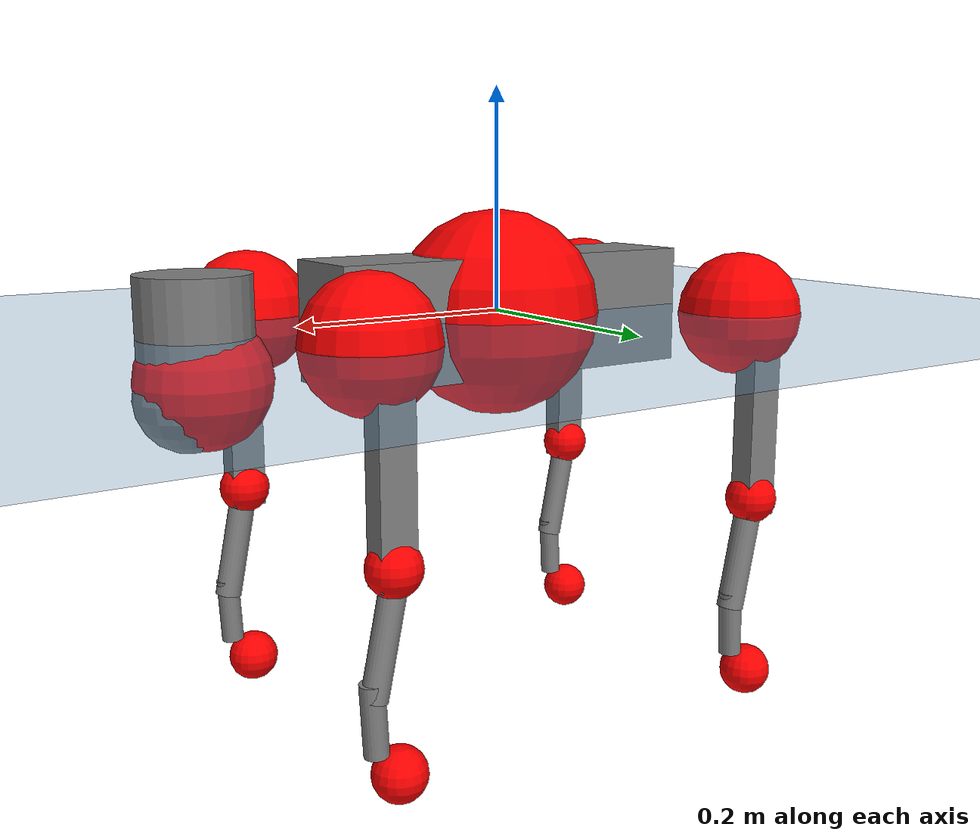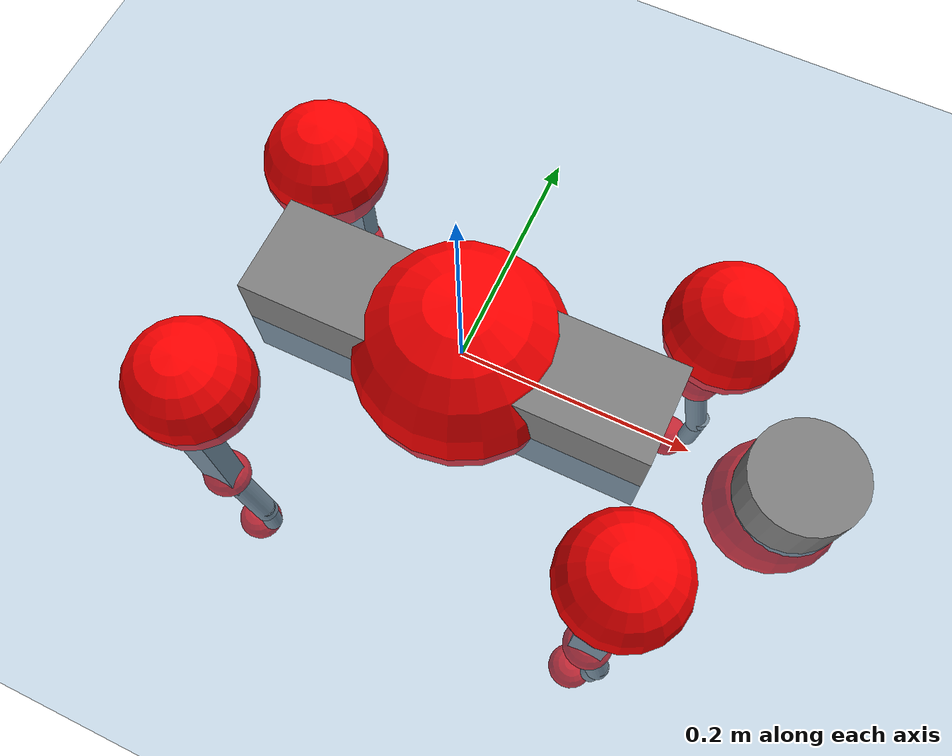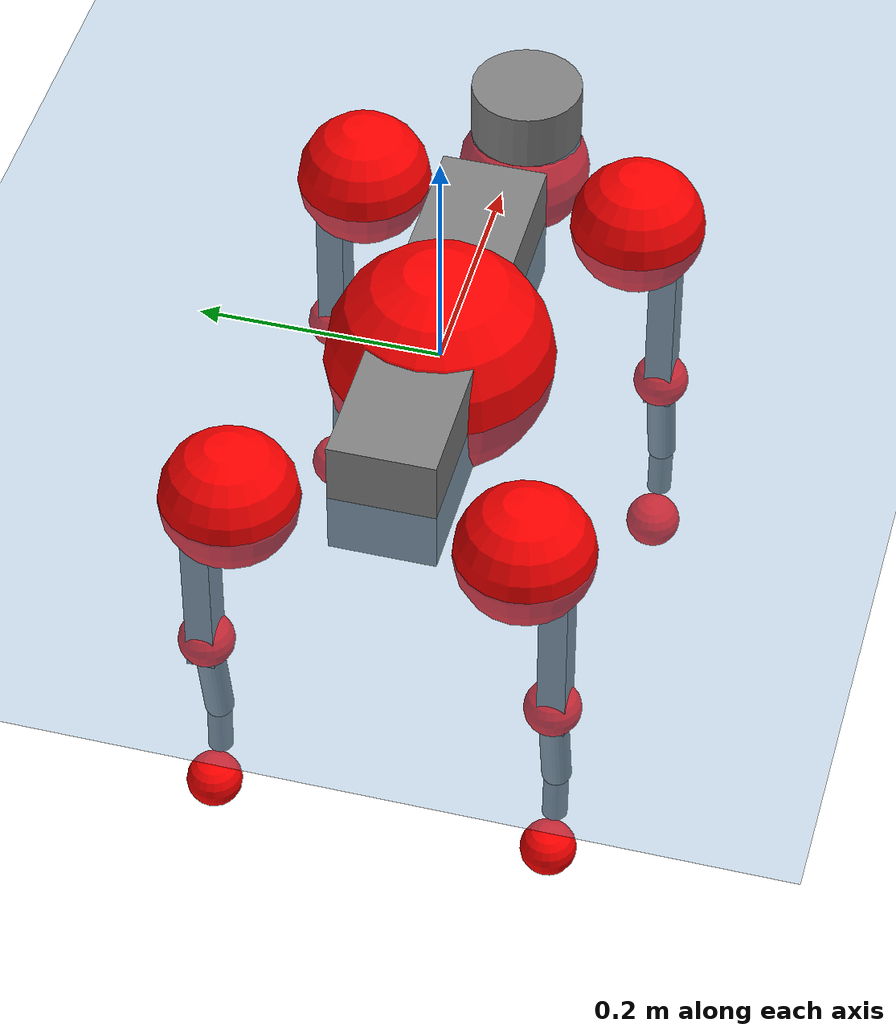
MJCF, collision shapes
<mujoco model="go2">
  <compiler angle="radian" assetdir="assets" balanceinertia="true" inertiafromgeom="false"/>

  <option timestep="0.005" density="1.2" viscosity="2e-05"/>

  <size nkey="1"/>

  <visual>
    <quality shadowsize="8192"/>
    <map shadowclip="0.5"/>
  </visual>

  <default>
    <default class="/">
      <geom contype="0" conaffinity="0" group="1" solref="-1000 -80"/>
      <site size="0.01 0.005 0.005" group="5"/>
      <general forcelimited="true" biastype="affine" gainprm="20" biasprm="0 -20 -0.5"/>
      <default class="go2">
        <joint armature="0.01" damping="0.01" frictionloss="0.2"/>
        <geom condim="1" margin="0.001"/>
        <default class="visual">
          <geom type="mesh" group="2"/>
        </default>
        <default class="collision">
          <geom group="3"/>
          <default class="foot">
            <geom size="0.022 0 0" condim="6" priority="1" friction="0.8 0.02 0.01" solimp="0.015 1 0.022"/>
          </default>
        </default>
        <default class="reward_collision_sphere">
          <geom group="5" rgba="1 0 0 1"/>
        </default>
      </default>
    </default>
  </default>

  <asset>
    <texture type="skybox" colorspace="auto" name="//unnamed_texture_0" builtin="gradient" rgb1="0.95 0.95 0.95" rgb2="0.95 0.95 0.95" width="100" height="600"/>
    <texture type="2d" colorspace="auto" name="texplane" builtin="checker" rgb1="0.345 0.575 0.748" rgb2="0.345 0.575 0.748" markrgb="1 1 1" width="512" height="512"/>
    <material name="MatPlane" class="/" texture="texplane" texuniform="true" texrepeat="2 2" specular="0.9"/>
    <material name="metal" class="/" rgba="0.9 0.95 0.95 1"/>
    <material name="black" class="/" rgba="0 0 0 1"/>
    <material name="white" class="/"/>
    <material name="gray" class="/" rgba="0.671705 0.692426 0.77427 1"/>
    <mesh name="base_0" class="/" file="base_0.obj"/>
    <mesh name="base_1" class="/" file="base_1.obj"/>
    <mesh name="base_2" class="/" file="base_2.obj"/>
    <mesh name="base_3" class="/" file="base_3.obj"/>
    <mesh name="base_4" class="/" file="base_4.obj"/>
    <mesh name="hip_0" class="/" file="hip_0.obj"/>
    <mesh name="hip_1" class="/" file="hip_1.obj"/>
    <mesh name="thigh_0" class="/" file="thigh_0.obj"/>
    <mesh name="thigh_1" class="/" file="thigh_1.obj"/>
    <mesh name="thigh_mirror_0" class="/" file="thigh_mirror_0.obj"/>
    <mesh name="thigh_mirror_1" class="/" file="thigh_mirror_1.obj"/>
    <mesh name="calf_0" class="/" file="calf_0.obj"/>
    <mesh name="calf_1" class="/" file="calf_1.obj"/>
    <mesh name="calf_mirror_0" class="/" file="calf_mirror_0.obj"/>
    <mesh name="calf_mirror_1" class="/" file="calf_mirror_1.obj"/>
    <mesh name="foot" class="/" file="foot.obj"/>
  </asset>

  <worldbody>
    <geom name="floor" class="/" size="100 100 0.125" type="plane" group="0" material="MatPlane"/>
    <light name="toplight_shadow" class="/" pos="0 0 5" dir="0.0990148 0.0990148 -0.990148" type="directional" ambient="0.04 0.04 0.04" diffuse="0.55 0.55 0.55" specular="0.12 0.12 0.12"/>
    <light name="toplight_fill" class="/" pos="0 0 5" dir="0.0990148 0.0990148 -0.990148" type="directional" castshadow="false" ambient="0.04 0.04 0.04" diffuse="0.3 0.3 0.3" specular="0.08 0.08 0.08"/>
    <body name="trunk" childclass="go2" pos="0.000808826 0.000190771 -0.00103562" quat="1 0.000117334 0.000301892 -0.00024578">
      <inertial pos="0.0184512 -0.00182342 -0.00340863" quat="-0.000449631 0.713195 -0.00452003 0.700951" mass="5.87174" diaginertia="0.108254 0.101885 0.00815777"/>
      <joint name="//unnamed_joint_0" type="free" armature="0" damping="0" frictionloss="0"/>
      <geom name="//unnamed_geom_1" class="visual" material="black" mesh="base_0"/>
      <geom name="//unnamed_geom_2" class="visual" material="black" mesh="base_1"/>
      <geom name="//unnamed_geom_3" class="visual" material="black" mesh="base_2"/>
      <geom name="//unnamed_geom_4" class="visual" material="white" mesh="base_3"/>
      <geom name="//unnamed_geom_5" class="visual" material="gray" mesh="base_4"/>
      <geom name="trunk_1" class="collision" size="0.17612 0.0437725 0.0533697" type="box"/>
      <geom name="trunk_2" class="collision" size="0.0468155 0.042134" pos="0.285189 0 0.0080254" type="cylinder"/>
      <geom name="trunk_3" class="collision" size="0.0440066" pos="0.293194 0 -0.0481524"/>
      <geom name="//unnamed_geom_9" class="reward_collision_sphere" size="0.0936311"/>
      <geom name="//unnamed_geom_10" class="reward_collision_sphere" size="0.0561786" pos="0.280185 0 -0.0361143"/>
      <site name="imu" pos="-0.0150471 -0.000582839 0.0235029" size="0.00936311"/>
      <camera name="track" pos="0 -2.01146 0" quat="0.707107 0.707107 0 0" mode="trackcom"/>
      <camera name="ego_camera" pos="0.312206 0 0.0361143" quat="-0.5 -0.5 0.5 0.5"/>
      <body name="FL_hip" pos="0.191691 0.0456717 0.001041" quat="1 -3.06996e-06 5.11973e-06 -7.50965e-06">
        <inertial pos="-0.00527859 0.0014028 -0.000602574" quat="0.497221 0.498562 0.505601 0.498574" mass="0.535848" diaginertia="0.000855872 0.00058425 0.00015488"/>
        <joint name="FL_hip_joint" pos="0 0 0" axis="1 -4.27434e-05 0.000213921" range="-1.04845 1.03078" armature="0.00940731" damping="0.00360585" frictionloss="0.183615"/>
        <geom name="//unnamed_geom_11" class="visual" material="metal" mesh="hip_0"/>
        <geom name="//unnamed_geom_12" class="visual" material="gray" mesh="hip_1"/>
        <geom name="//unnamed_geom_13" class="collision" size="0.0430703 0.0187262" pos="0 0.0804584 0" quat="0.707107 0.707107 0 0" type="cylinder"/>
        <geom name="//unnamed_geom_14" class="reward_collision_sphere" size="0.0561786" pos="0 0.0704011 0"/>
        <body name="FL_thigh" pos="-0.000670047 0.0977464 0.00170709" quat="1 -0.000838499 0.000426472 1.49965e-05">
          <inertial pos="-0.00386535 -0.0224111 -0.0264543" quat="0.827928 0.0815414 -0.0234273 0.55438" mass="0.931676" diaginertia="0.00594008 0.00579101 0.000286961"/>
          <joint name="FL_thigh_joint" pos="0 0 0" axis="0.00616725 0.999948 0.0080679" stiffness="0.00318748" range="-1.53177 3.4998" armature="0.00973814" damping="0.0107287" frictionloss="0.189186"/>
          <geom name="//unnamed_geom_15" class="visual" material="metal" mesh="thigh_0"/>
          <geom name="//unnamed_geom_16" class="visual" material="gray" mesh="thigh_1"/>
          <geom name="//unnamed_geom_17" class="collision" size="0.0997171 0.0114698 0.0159173" pos="0 0 -0.0854705" quat="0.707107 0 0.707107 0" type="box"/>
          <body name="FL_calf" pos="-0.000802737 0.000719366 -0.170936" quat="1 8.68292e-05 7.31419e-05 8.16258e-05">
            <inertial pos="0.00667857 -0.00107759 -0.112443" quat="0.710598 4.09704e-07 -0.004593 0.703584" mass="0.198321" diaginertia="0.00146967 0.00151853 1.76211e-05"/>
            <joint name="FL_calf_joint" pos="0 0 0" axis="-0.00585938 0.999983 -0.000387634" range="-2.71862 -0.843612" armature="0.00890069" damping="0.00124533" frictionloss="0.18423"/>
            <geom name="//unnamed_geom_18" class="visual" material="gray" mesh="calf_0"/>
            <geom name="//unnamed_geom_19" class="visual" material="black" mesh="calf_1"/>
            <geom name="FL_calf0" class="collision" size="0.0112357 0.0561786" pos="0.00800529 0 -0.0481524" quat="0.994493 0 -0.104807 0" type="cylinder"/>
            <geom name="//unnamed_geom_21" class="collision" size="0.0102994 0.0304301" pos="0.0200132 0 -0.118776" quat="0.999688 0 0.0249974 0" type="cylinder"/>
            <geom name="//unnamed_geom_22" class="visual" pos="0 0 -0.170941" quat="1 0 0 0" material="black" mesh="foot"/>
            <geom name="FL_foot" class="foot" size="0.0174467" pos="-0.00200132 0 -0.170941"/>
            <geom name="//unnamed_geom_24" class="reward_collision_sphere" size="0.0234078"/>
            <geom name="//unnamed_geom_25" class="reward_collision_sphere" size="0.0234078" pos="-0.00200132 0 -0.170941"/>
            <site name="FL_foot" class="foot" pos="-0.00200132 0 -0.170941" size="0.00936311"/>
          </body>
        </body>
      </body>
      <body name="FR_hip" pos="0.191985 -0.047763 0.000895874" quat="1 -3.89212e-05 -3.55979e-05 -5.04483e-05">
        <inertial pos="-0.00527501 -0.0042928 -0.000749453" quat="0.499603 0.510225 0.489173 0.500777" mass="0.552666" diaginertia="0.000872884 0.000628893 0.00015781"/>
        <joint name="FR_hip_joint" pos="0 0 0" axis="0.99995 -0.00869672 0.0048565" range="-1.05302 1.05358" armature="0.00943193" damping="0.00351506" frictionloss="0.17778"/>
        <geom name="//unnamed_geom_26" class="visual" pos="0 1.77011e-09 7.59238e-08" quat="4.63268e-05 1 0 0" material="metal" mesh="hip_0"/>
        <geom name="//unnamed_geom_27" class="visual" pos="0 2.86957e-09 -1.87789e-07" quat="4.63268e-05 1 0 0" material="gray" mesh="hip_1"/>
        <geom name="//unnamed_geom_28" class="collision" size="0.0430703 0.0187262" pos="0 -0.0804584 0" quat="0.707107 0.707107 0 0" type="cylinder"/>
        <geom name="//unnamed_geom_29" class="reward_collision_sphere" size="0.0561786" pos="0 -0.0704011 0"/>
        <body name="FR_thigh" pos="0.000104773 -0.0965297 -0.00149025" quat="1 -3.34457e-05 -0.000426157 -0.000710831">
          <inertial pos="-0.00148972 0.0235112 -0.0259864" quat="0.551968 -0.0200318 0.0848715 0.829293" mass="0.962741" diaginertia="0.0059764 0.00591871 0.000301327"/>
          <joint name="FR_thigh_joint" pos="0 0 0" axis="0.00280187 -0.999995 -0.00153764" range="-3.51216 1.58068" armature="0.00924658" damping="0.00947699" frictionloss="0.178912"/>
          <geom name="//unnamed_geom_30" class="visual" material="metal" mesh="thigh_mirror_0"/>
          <geom name="//unnamed_geom_31" class="visual" material="gray" mesh="thigh_mirror_1"/>
          <geom name="//unnamed_geom_32" class="collision" size="0.0997171 0.0114698 0.0159173" pos="0 0 -0.0854705" quat="0.707107 0 0.707107 0" type="box"/>
          <body name="FR_calf" pos="0.000202476 -0.000145962 -0.169799" quat="1 1.8386e-06 3.4786e-05 1.17652e-05">
            <inertial pos="0.00525315 0.000770365 -0.113923" quat="0.709892 0.00282896 0.00258898 0.7043" mass="0.200711" diaginertia="0.00149919 0.00154278 1.79686e-05"/>
            <joint name="FR_calf_joint" pos="0 0 0" axis="-4.63598e-05 -1 -4.59571e-05" range="0.793262 2.72469" armature="0.0100218" damping="0.0186139" frictionloss="0.17982"/>
            <geom name="//unnamed_geom_33" class="visual" material="gray" mesh="calf_mirror_0"/>
            <geom name="//unnamed_geom_34" class="visual" material="black" mesh="calf_mirror_1"/>
            <geom name="FR_calf0" class="collision" size="0.012172 0.0561786" pos="0.0100066 0 -0.0481524" quat="0.995004 0 -0.0998334 0" type="cylinder"/>
            <geom name="//unnamed_geom_36" class="collision" size="0.0102994 0.0304301" pos="0.0200132 0 -0.118776" quat="0.999688 0 0.0249974 0" type="cylinder"/>
            <geom name="//unnamed_geom_37" class="visual" pos="0 0 -0.170941" quat="1 0 0 0" material="black" mesh="foot"/>
            <geom name="FR_foot" class="foot" size="0.0216226" pos="-0.00200132 0 -0.170941"/>
            <geom name="//unnamed_geom_39" class="reward_collision_sphere" size="0.0234078"/>
            <geom name="//unnamed_geom_40" class="reward_collision_sphere" size="0.0234078" pos="-0.00200132 0 -0.170941"/>
            <site name="FR_foot" class="foot" pos="-0.00200132 0 -0.170941" size="0.00936311"/>
          </body>
        </body>
      </body>
      <body name="RL_hip" pos="-0.191659 0.0469198 -0.00265757" quat="1 -0.000240502 -0.000146079 0.000202039">
        <inertial pos="0.00553674 0.00273765 -0.0020818" quat="0.504537 0.493487 0.500156 0.501754" mass="0.571538" diaginertia="0.000939973 0.000634508 0.000164986"/>
        <joint name="RL_hip_joint" pos="0 0 0" axis="-0.999841 -0.00204778 -0.0177305" stiffness="0.00320834" range="-1.04173 1.0266" armature="0.00919469" damping="0" frictionloss="0.186335"/>
        <geom name="//unnamed_geom_41" class="visual" pos="-1.72596e-09 0 -3.38327e-07" quat="4.63268e-05 0 1 0" material="metal" mesh="hip_0"/>
        <geom name="//unnamed_geom_42" class="visual" pos="-2.79798e-09 0 -3.00048e-07" quat="4.63268e-05 0 1 0" material="gray" mesh="hip_1"/>
        <geom name="//unnamed_geom_43" class="collision" size="0.0430703 0.0187262" pos="0 0.0804584 0" quat="0.707107 0.707107 0 0" type="cylinder"/>
        <geom name="//unnamed_geom_44" class="reward_collision_sphere" size="0.0561786" pos="0 0.0704011 0"/>
        <body name="RL_thigh" pos="-0.000195102 0.0972112 -0.000485144" quat="1 -0.000393433 -0.000352991 9.19629e-05">
          <inertial pos="-0.00610698 -0.0233307 -0.0286037" quat="0.829747 0.0860653 -0.0201148 0.551097" mass="0.949136" diaginertia="0.0057434 0.0060088 0.000286532"/>
          <joint name="RL_thigh_joint" pos="0 0 0" axis="0.00822032 0.999966 0.000976117" stiffness="0.0131329" range="-0.511453 4.52949" armature="0.00917714" damping="0.000385368" frictionloss="0.188232"/>
          <geom name="//unnamed_geom_45" class="visual" material="metal" mesh="thigh_0"/>
          <geom name="//unnamed_geom_46" class="visual" material="gray" mesh="thigh_1"/>
          <geom name="//unnamed_geom_47" class="collision" size="0.0997171 0.0114698 0.0159173" pos="0 0 -0.0854705" quat="0.707107 0 0.707107 0" type="box"/>
          <body name="RL_calf" pos="0.000973239 -0.000749856 -0.169908" quat="1 -6.96795e-05 -2.91796e-05 -4.80214e-05">
            <inertial pos="0.00574553 0.00139752 -0.112302" quat="0.710622 0.00185841 -0.00513383 0.703552" mass="0.204671" diaginertia="0.00153289 0.00158595 1.80146e-05"/>
            <joint name="RL_calf_joint" pos="0 0 0" axis="0.0136512 0.999899 -0.00405033" range="-2.68814 -0.850431" armature="0.0103324" damping="0.0111243" frictionloss="0.173852"/>
            <geom name="//unnamed_geom_48" class="visual" material="gray" mesh="calf_0"/>
            <geom name="//unnamed_geom_49" class="visual" material="black" mesh="calf_1"/>
            <geom name="RL_calf0" class="collision" size="0.012172 0.0561786" pos="0.0100066 0 -0.0481524" quat="0.995004 0 -0.0998334 0" type="cylinder"/>
            <geom name="//unnamed_geom_51" class="collision" size="0.0102994 0.0304301" pos="0.0200132 0 -0.118776" quat="0.999688 0 0.0249974 0" type="cylinder"/>
            <geom name="//unnamed_geom_52" class="visual" pos="0 0 -0.170941" quat="1 0 0 0" material="black" mesh="foot"/>
            <geom name="RL_foot" class="foot" size="0.0179331" pos="-0.00200132 0 -0.170941"/>
            <geom name="//unnamed_geom_54" class="reward_collision_sphere" size="0.0234078"/>
            <geom name="//unnamed_geom_55" class="reward_collision_sphere" size="0.0234078" pos="-0.00200132 0 -0.170941"/>
            <site name="RL_foot" class="foot" pos="-0.00200132 0 -0.170941" size="0.00936311"/>
          </body>
        </body>
      </body>
      <body name="RR_hip" pos="-0.191102 -0.0471672 -0.00243716" quat="1 8.27157e-05 9.49634e-06 6.0256e-05">
        <inertial pos="0.0053462 -0.00229902 -0.00234075" quat="0.503245 0.500024 0.487347 0.509131" mass="0.549384" diaginertia="0.000861056 0.000592087 0.000155086"/>
        <joint name="RR_hip_joint" pos="0 0 0" axis="-0.999941 0.00108425 -0.0107829" stiffness="0.00216987" range="-1.08308 1.03546" armature="0.00977338" damping="0.00684351" frictionloss="0.18833"/>
        <geom name="//unnamed_geom_56" class="visual" pos="1.72613e-09 1.77011e-09 -4.14251e-07" quat="2.14617e-09 4.63268e-05 4.63268e-05 -1" material="metal" mesh="hip_0"/>
        <geom name="//unnamed_geom_57" class="visual" pos="2.79755e-09 2.86957e-09 -1.1226e-07" quat="2.14617e-09 4.63268e-05 4.63268e-05 -1" material="gray" mesh="hip_1"/>
        <geom name="//unnamed_geom_58" class="collision" size="0.0430703 0.0187262" pos="0 -0.0804584 0" quat="0.707107 0.707107 0 0" type="cylinder"/>
        <geom name="//unnamed_geom_59" class="reward_collision_sphere" size="0.0561786" pos="0 -0.0704011 0"/>
        <body name="RR_thigh" pos="0.002375 -0.0966251 -0.00189646" quat="1 -0.000748091 0.00016925 -6.33621e-05">
          <inertial pos="-0.00382351 0.0223563 -0.0270775" quat="0.551044 -0.0198426 0.0850142 0.829897" mass="0.932494" diaginertia="0.00588294 0.00595809 0.000290802"/>
          <joint name="RR_thigh_joint" pos="0 0 0" axis="-0.000610929 -0.999981 -0.00621465" stiffness="0.000159962" range="-4.54053 0.545121" armature="0.00942774" damping="0.0102343" frictionloss="0.186626"/>
          <geom name="//unnamed_geom_60" class="visual" material="metal" mesh="thigh_mirror_0"/>
          <geom name="//unnamed_geom_61" class="visual" material="gray" mesh="thigh_mirror_1"/>
          <geom name="//unnamed_geom_62" class="collision" size="0.0997171 0.0114698 0.0159173" pos="0 0 -0.0854705" quat="0.707107 0 0.707107 0" type="box"/>
          <body name="RR_calf" pos="-0.000613542 0.0016025 -0.170622" quat="0.999999 -8.1149e-05 0.000392306 -0.000918592">
            <inertial pos="0.007405 0.00143246 -0.114459" quat="0.705455 -0.00791961 0.00454599 0.708696" mass="0.201776" diaginertia="0.00151114 0.00150709 1.78676e-05"/>
            <joint name="RR_calf_joint" pos="0 0 0" axis="-0.00410609 -0.999991 -0.00132" range="0.843002 2.76579" armature="0.00932479" damping="0.0167335" frictionloss="0.179389"/>
            <geom name="//unnamed_geom_63" class="visual" material="gray" mesh="calf_mirror_0"/>
            <geom name="//unnamed_geom_64" class="visual" material="black" mesh="calf_mirror_1"/>
            <geom name="RR_calf0" class="collision" size="0.012172 0.0561786" pos="0.0100066 0 -0.0481524" quat="0.995004 0 -0.0998334 0" type="cylinder"/>
            <geom name="//unnamed_geom_66" class="collision" size="0.0102994 0.0304301" pos="0.0200132 0 -0.118776" quat="0.999688 0 0.0249974 0" type="cylinder"/>
            <geom name="//unnamed_geom_67" class="visual" pos="0 0 -0.170941" quat="1 0 0 0" material="black" mesh="foot"/>
            <geom name="RR_foot" class="foot" size="0.0215437" pos="-0.00200132 0 -0.170941"/>
            <geom name="//unnamed_geom_69" class="reward_collision_sphere" size="0.0234078"/>
            <geom name="//unnamed_geom_70" class="reward_collision_sphere" size="0.0234078" pos="-0.00200132 0 -0.170941"/>
            <site name="RR_foot" class="foot" pos="-0.00200132 0 -0.170941" size="0.00936311"/>
          </body>
        </body>
      </body>
    </body>
  </worldbody>

  <contact>
    <pair class="/" geom1="floor" geom2="FL_foot" name="//unnamed_contact_0"/>
    <pair class="/" geom1="floor" geom2="FR_foot" name="//unnamed_contact_1"/>
    <pair class="/" geom1="floor" geom2="RL_foot" name="//unnamed_contact_2"/>
    <pair class="/" geom1="floor" geom2="RR_foot" name="//unnamed_contact_3"/>
  </contact>

  <actuator>
    <general name="FL_hip" class="/" joint="FL_hip_joint" forcerange="-21.1656 21.1656" gainprm="18.9433" biasprm="0 -18.9433 -0.471321"/>
    <general name="FL_thigh" class="/" joint="FL_thigh_joint" forcerange="-20.3578 20.3578" gainprm="18.9433" biasprm="0 -18.9433 -0.471321"/>
    <general name="FL_calf" class="/" joint="FL_calf_joint" forcerange="-43.9975 43.9975" gainprm="18.9433" biasprm="0 -18.9433 -0.471321"/>
    <general name="FR_hip" class="/" joint="FR_hip_joint" forcerange="-21.9913 21.9913" gainprm="18.9433" biasprm="0 -18.9433 -0.471321"/>
    <general name="FR_thigh" class="/" joint="FR_thigh_joint" forcerange="-22.6875 22.6875" gainprm="18.9433" biasprm="0 -18.9433 -0.471321"/>
    <general name="FR_calf" class="/" joint="FR_calf_joint" forcerange="-42.8712 42.8712" gainprm="18.9433" biasprm="0 -18.9433 -0.471321"/>
    <general name="RL_hip" class="/" joint="RL_hip_joint" forcerange="-22.1744 22.1744" gainprm="18.9433" biasprm="0 -18.9433 -0.471321"/>
    <general name="RL_thigh" class="/" joint="RL_thigh_joint" forcerange="-21.5737 21.5737" gainprm="18.9433" biasprm="0 -18.9433 -0.471321"/>
    <general name="RL_calf" class="/" joint="RL_calf_joint" forcerange="-40.936 40.936" gainprm="18.9433" biasprm="0 -18.9433 -0.471321"/>
    <general name="RR_hip" class="/" joint="RR_hip_joint" forcerange="-22.0124 22.0124" gainprm="18.9433" biasprm="0 -18.9433 -0.471321"/>
    <general name="RR_thigh" class="/" joint="RR_thigh_joint" forcerange="-23.5783 23.5783" gainprm="18.9433" biasprm="0 -18.9433 -0.471321"/>
    <general name="RR_calf" class="/" joint="RR_calf_joint" forcerange="-41.2794 41.2794" gainprm="18.9433" biasprm="0 -18.9433 -0.471321"/>
  </actuator>

  <sensor>
    <gyro site="imu" name="imu_angular_velocity"/>
    <velocimeter site="imu" name="imu_linear_velocity"/>
    <framelinvel objtype="site" objname="FL_foot" name="FL_foot_global_linear_velocity"/>
    <framelinvel objtype="site" objname="FR_foot" name="FR_foot_global_linear_velocity"/>
    <framelinvel objtype="site" objname="RL_foot" name="RL_foot_global_linear_velocity"/>
    <framelinvel objtype="site" objname="RR_foot" name="RR_foot_global_linear_velocity"/>
  </sensor>

  <keyframe>
    <key name="home" qpos="0 0 0.325 1 0 0 0 0.1 0.8 -1.5 -0.1 -0.8 1.5 -0.1 0.8 -1.5 0.1 -0.8 1.5"/>
  </keyframe>
</mujoco>
